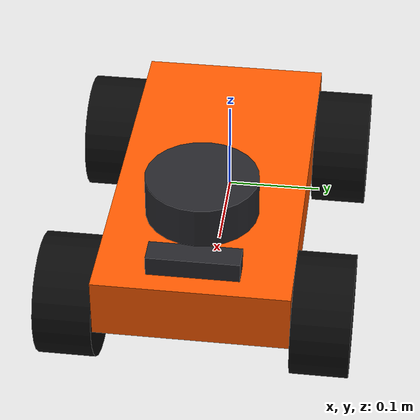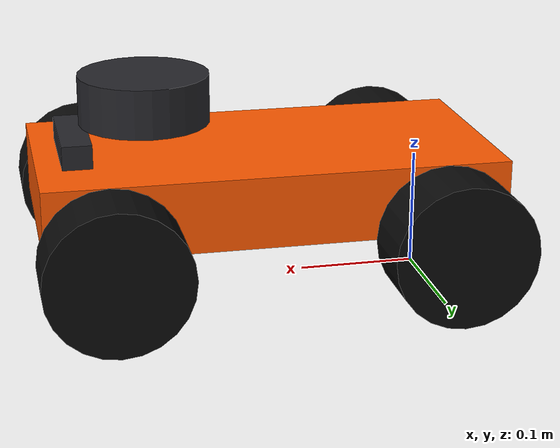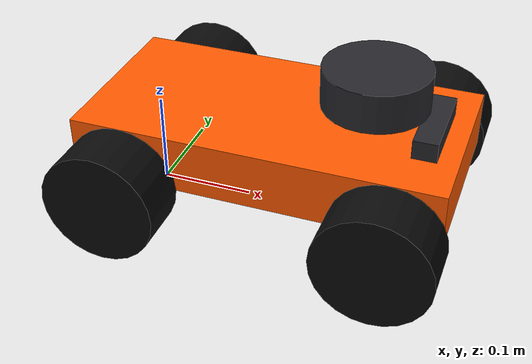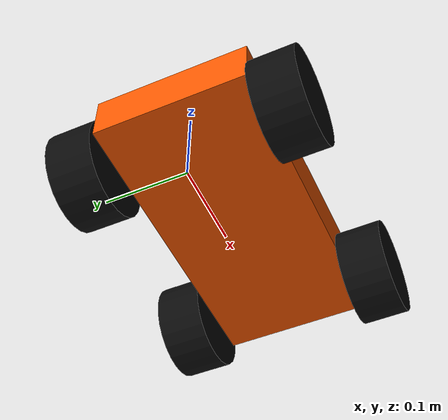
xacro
<?xml version="1.0"?>
<robot name="ackermann_robot" xmlns:xacro="http://www.ros.org/wiki/xacro">

  <!-- Measured running gear. -->
  <xacro:property name="wheelbase" value="0.2775"/>
  <xacro:property name="track_width" value="0.247"/>
  <xacro:property name="wheel_radius" value="0.060"/>
  <xacro:property name="wheel_width" value="0.057"/>

  <!-- Thin chassis plate: measured body length, between inner tire faces. -->
  <xacro:property name="body_rear_x" value="-0.0538"/>
  <xacro:property name="body_front_x" value="0.3312"/>
  <xacro:property name="body_length" value="${body_front_x - body_rear_x}"/>
  <xacro:property name="body_width" value="${track_width - wheel_width}"/>
  <xacro:property name="body_height" value="${wheel_radius}"/>
  <xacro:property name="body_center_x"
                  value="${(body_front_x + body_rear_x) / 2.0}"/>
  <xacro:property name="body_center_z" value="${1.5 * wheel_radius}"/>

  <!-- Sensor centers measured from base_link. -->
  <xacro:property name="lidar_x" value="0.237"/>
  <xacro:property name="lidar_z" value="0.165"/>
  <xacro:property name="camera_x" value="0.2975"/>
  <xacro:property name="camera_z" value="0.1275"/>

  <material name="robot_orange">
    <color rgba="1.0 0.35 0.0 1.0"/>
  </material>
  <material name="tire_black">
    <color rgba="0.04 0.04 0.04 1.0"/>
  </material>
  <material name="sensor_dark">
    <color rgba="0.15 0.15 0.17 1.0"/>
  </material>

  <xacro:macro name="wheel_geometry" params="x y">
    <visual>
      <origin xyz="${x} ${y} ${wheel_radius}" rpy="${pi / 2.0} 0 0"/>
      <geometry>
        <cylinder radius="${wheel_radius}" length="${wheel_width}"/>
      </geometry>
      <material name="tire_black"/>
    </visual>
    <collision>
      <origin xyz="${x} ${y} ${wheel_radius}" rpy="${pi / 2.0} 0 0"/>
      <geometry>
        <cylinder radius="${wheel_radius}" length="${wheel_width}"/>
      </geometry>
    </collision>
  </xacro:macro>

  <link name="base_link">
    <visual>
      <origin xyz="${body_center_x} 0 ${body_center_z}"/>
      <geometry>
        <box size="${body_length} ${body_width} ${body_height}"/>
      </geometry>
      <material name="robot_orange"/>
    </visual>
    <collision>
      <origin xyz="${body_center_x} 0 ${body_center_z}"/>
      <geometry>
        <box size="${body_length} ${body_width} ${body_height}"/>
      </geometry>
    </collision>

    <xacro:wheel_geometry x="0.0" y="${ track_width / 2.0}"/>
    <xacro:wheel_geometry x="0.0" y="${-track_width / 2.0}"/>
    <xacro:wheel_geometry x="${wheelbase}" y="${ track_width / 2.0}"/>
    <xacro:wheel_geometry x="${wheelbase}" y="${-track_width / 2.0}"/>

    <!-- Approximate 4 kg box inertia; replace after weighing the robot. -->
    <inertial>
      <origin xyz="${body_center_x} 0 ${body_center_z}"/>
      <mass value="4.0"/>
      <inertia
        ixx="${4.0 / 12.0 * (body_width * body_width + body_height * body_height)}"
        ixy="0.0"
        ixz="0.0"
        iyy="${4.0 / 12.0 * (body_length * body_length + body_height * body_height)}"
        iyz="0.0"
        izz="${4.0 / 12.0 * (body_length * body_length + body_width * body_width)}"/>
    </inertial>
  </link>

  <!-- Fixed sensor joints are required to publish their measured TF frames. -->
  <link name="laser">
    <visual>
      <geometry>
        <cylinder radius="0.055" length="0.0413"/>
      </geometry>
      <material name="sensor_dark"/>
    </visual>
  </link>
  <joint name="laser_joint" type="fixed">
    <parent link="base_link"/>
    <child link="laser"/>
    <origin xyz="${lidar_x} 0 ${lidar_z}" rpy="0 0 ${pi}"/>
  </joint>

  <link name="camera_link">
    <visual>
      <geometry>
        <box size="0.025 0.090 0.025"/>
      </geometry>
      <material name="sensor_dark"/>
    </visual>
  </link>
  <joint name="camera_joint" type="fixed">
    <parent link="base_link"/>
    <child link="camera_link"/>
    <origin xyz="${camera_x} 0 ${camera_z}" rpy="0 0 0"/>
  </joint>
</robot>
